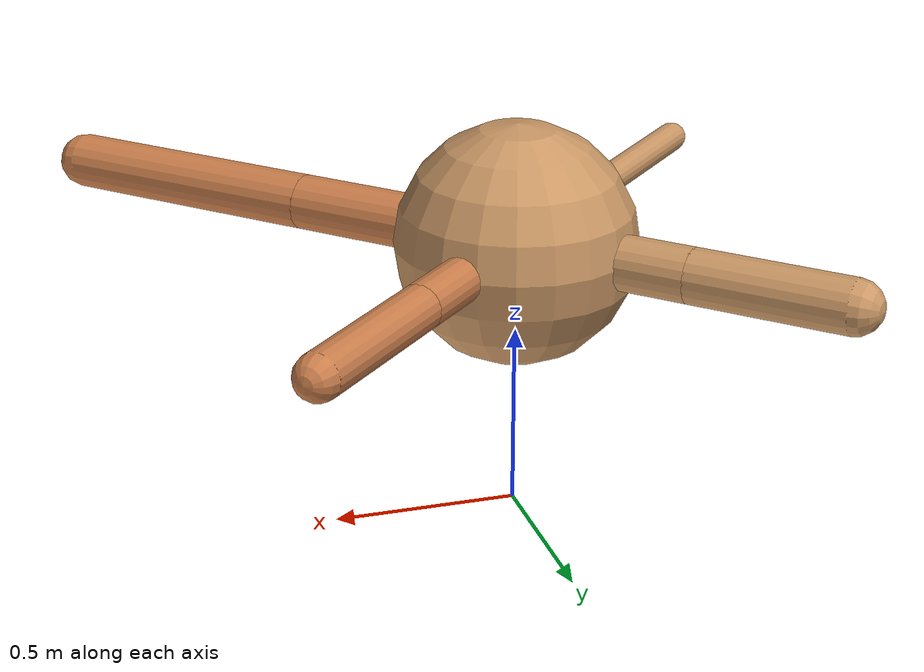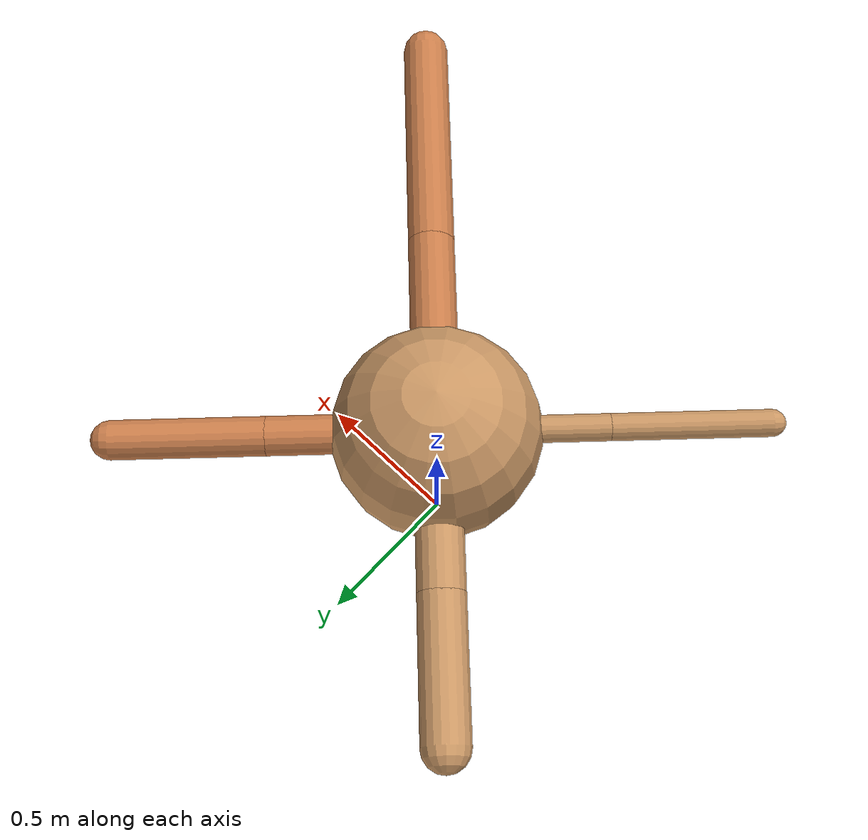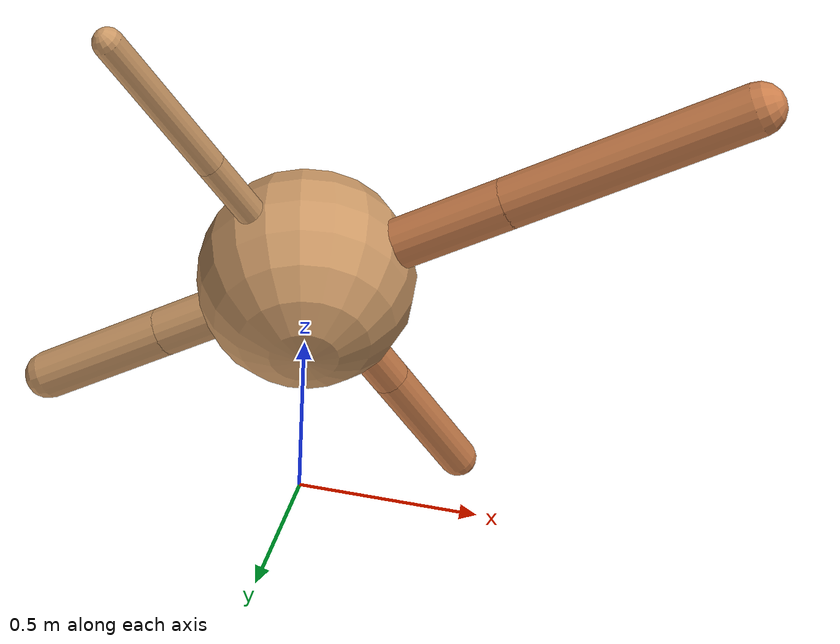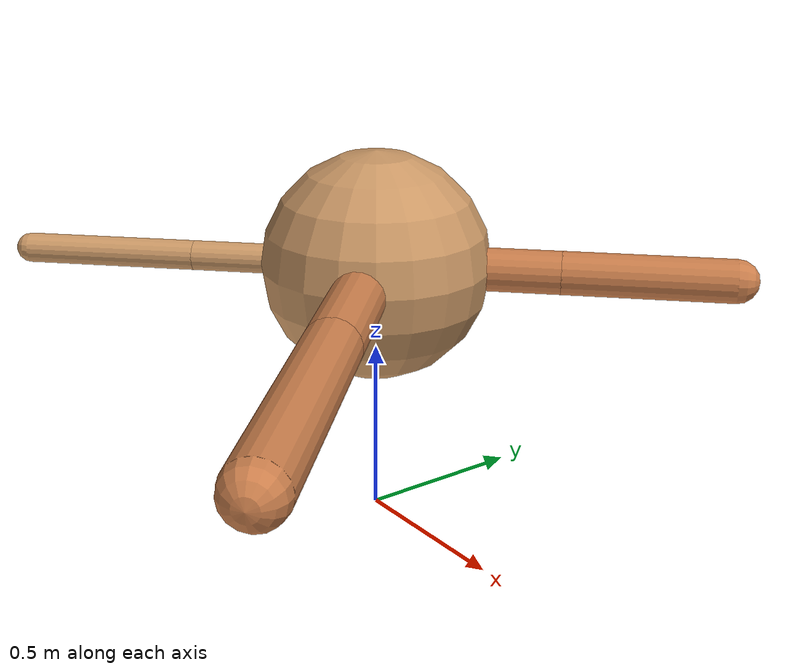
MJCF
<?xml version="1.0" ?>
<mujoco model="ant">

	<compiler angle="degree" coordinate="local" inertiafromgeom="true"/>

	<option integrator="RK4" timestep="0.01"/>

	<custom>

		<numeric data="0.0 0.0 0.55 1.0 0.0 0.0 0.0 0.0 1.0 0.0 -1.0 0.0 -1.0 0.0 1.0" name="init_qpos"/>

	</custom>

	<default>

		<joint armature="1" damping="1" limited="true"/>

		<geom conaffinity="0" condim="3" density="5.0" friction="1.5 0.1 0.1" margin="0.01" rgba="0.8 0.6 0.4 1"/>

	</default>

	<worldbody>

		<body name="torso" pos="0 0 0.75">

			<geom name="torso_geom" pos="0 0 0" size="0.3256558542735485" type="sphere"/>

			<!--joint armature="0" damping="0" limited="false" margin="0.01" name="root" pos="0 0 0" type="free"/-->

			<body name="front_left_leg" pos="0 0 0">

				<geom fromto="0 0 0 0.2 0.2 0" name="aux_1_geom" size="0.061469760382700626" type="capsule" rgba=".8 .5 .3 1"/>

				<body name="aux_1" pos="0.2 0.2 0">

					<joint axis="0 0 1" name="hip_1" pos="0.0 0.0 0.0" range="-40 40" type="hinge"/>

					<geom fromto="0 0 0 0.1670316908309456 0.1670316908309456 0" name="left_leg_geom" size="0.061469760382700626" type="capsule" rgba=".8 .5 .3 1"/>

					<body pos="0.1670316908309456 0.1670316908309456 0" name="front_left_foot">

						<joint axis="-1 1 0" name="ankle_1" pos="0.0 0.0 0.0" range="30 100" type="hinge"/>

						<geom fromto="0 0 0 0.3340633816618912 0.3340633816618912 0" name="left_ankle_geom" size="0.061469760382700626" type="capsule" rgba=".8 .5 .3 1"/>

					</body>

				</body>

			</body>

			<body name="front_right_leg" pos="0 0 0">

				<geom fromto="0 0 0 -0.2 0.2 0" name="aux_2_geom" size="0.07422732148247346" type="capsule"/>

				<body name="aux_2" pos="-0.2 0.2 0">

					<joint axis="0 0 1" name="hip_2" pos="0.0 0.0 0.0" range="-40 40" type="hinge"/>

					<geom fromto="0 0 0 -0.15266360450623126 0.15266360450623126 0" name="right_leg_geom" size="0.07422732148247346" type="capsule"/>

					<body pos="-0.15266360450623126 0.15266360450623126 0" name="front_right_foot">

						<joint axis="1 1 0" name="ankle_2" pos="0.0 0.0 0.0" range="-100 -30" type="hinge"/>

						<geom fromto="0 0 0 -0.3053272090124625 0.3053272090124625 0" name="right_ankle_geom" size="0.07422732148247346" type="capsule"/>

					</body>

				</body>

			</body>

			<body name="left_back_leg" pos="0 0 0">

				<geom fromto="0 0 0 -0.2 -0.2 0" name="aux_3_geom" size="0.04285160628882341" type="capsule"/>

				<body name="aux_3" pos="-0.2 -0.2 0">

					<joint axis="0 0 1" name="hip_3" pos="0.0 0.0 0.0" range="-40 40" type="hinge"/>

					<geom fromto="0 0 0 -0.1748886603902141 -0.1748886603902141 0" name="back_leg_geom" size="0.04285160628882341" type="capsule"/>

					<body pos="-0.1748886603902141 -0.1748886603902141 0" name="left_back_foot">

						<joint axis="-1 1 0" name="ankle_3" pos="0.0 0.0 0.0" range="-100 -30" type="hinge"/>

						<geom fromto="0 0 0 -0.3497773207804282 -0.3497773207804282 0" name="third_ankle_geom" size="0.04285160628882341" type="capsule"/>

					</body>

				</body>

			</body>

			<body name="right_back_leg" pos="0 0 0">

				<geom fromto="0 0 0 0.2 -0.2 0" name="aux_4_geom" size="0.07581184770299897" type="capsule" rgba=".8 .5 .3 1"/>

				<body name="aux_4" pos="0.2 -0.2 0">

					<joint axis="0 0 1" name="hip_4" pos="0.0 0.0 0.0" range="-40 40" type="hinge"/>

					<geom fromto="0 0 0 0.264141795199542 -0.264141795199542 0" name="rightback_leg_geom" size="0.07581184770299897" type="capsule" rgba=".8 .5 .3 1"/>

					<body pos="0.264141795199542 -0.264141795199542 0" name="right_back_foot">

						<joint axis="1 1 0" name="ankle_4" pos="0.0 0.0 0.0" range="30 100" type="hinge"/>

						<geom fromto="0 0 0 0.528283590399084 -0.528283590399084 0" name="fourth_ankle_geom" size="0.07581184770299897" type="capsule" rgba=".8 .5 .3 1"/>

					</body>

				</body>

			</body>

		</body>

	</worldbody>

	<actuator>

		<motor ctrllimited="true" ctrlrange="-1.0 1.0" joint="hip_4" gear="150"/>

		<motor ctrllimited="true" ctrlrange="-1.0 1.0" joint="ankle_4" gear="150"/>

		<motor ctrllimited="true" ctrlrange="-1.0 1.0" joint="hip_1" gear="150"/>

		<motor ctrllimited="true" ctrlrange="-1.0 1.0" joint="ankle_1" gear="150"/>

		<motor ctrllimited="true" ctrlrange="-1.0 1.0" joint="hip_2" gear="150"/>

		<motor ctrllimited="true" ctrlrange="-1.0 1.0" joint="ankle_2" gear="150"/>

		<motor ctrllimited="true" ctrlrange="-1.0 1.0" joint="hip_3" gear="150"/>

		<motor ctrllimited="true" ctrlrange="-1.0 1.0" joint="ankle_3" gear="150"/>

	</actuator>

</mujoco>
